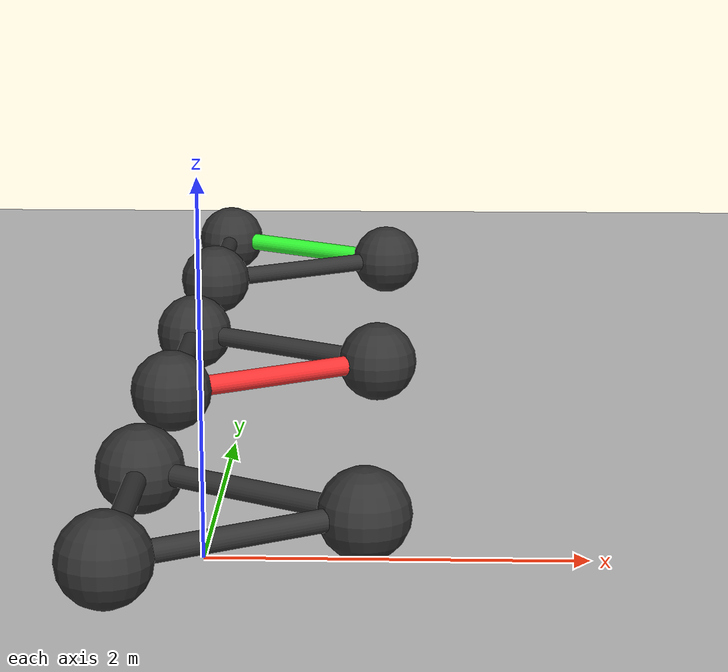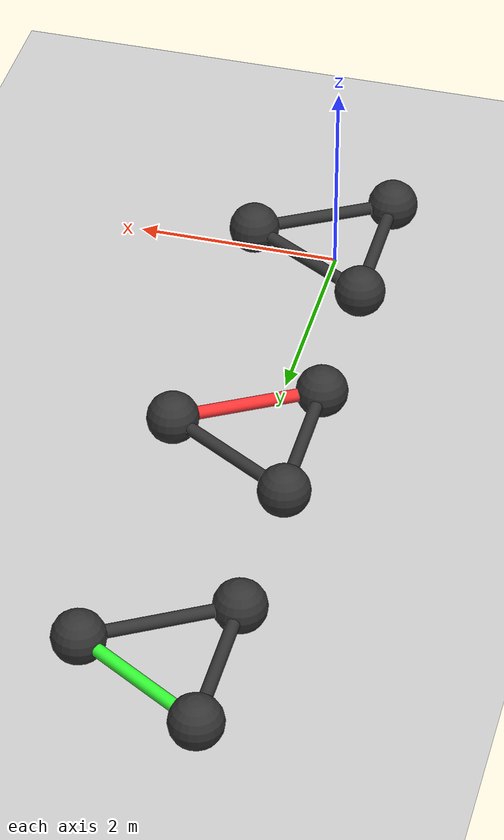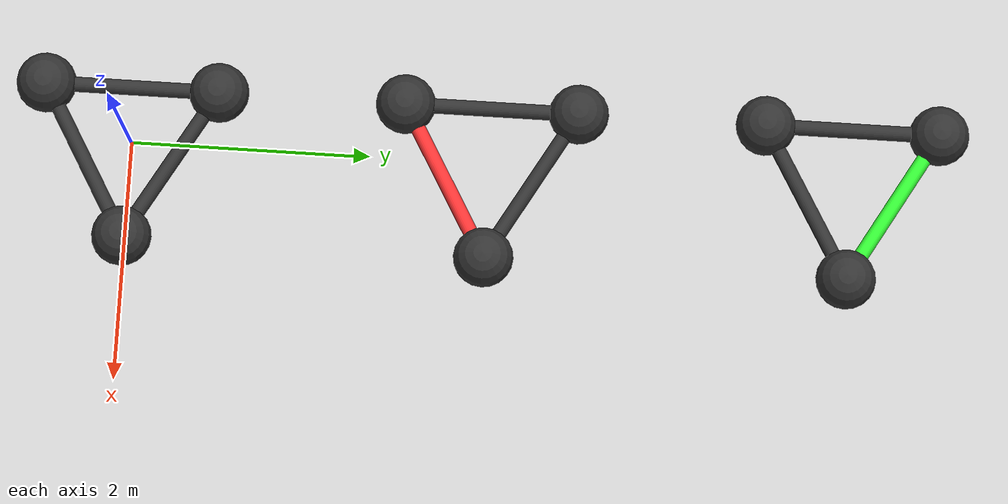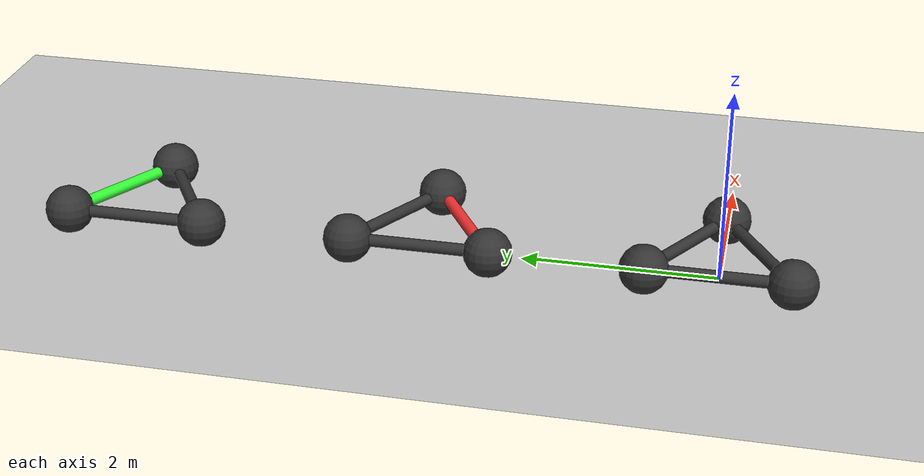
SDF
<?xml version="1.0" ?>

<sdf version="1.6">
  <world name="triball_drift">
    <plugin
      filename="gz-sim-apply-link-wrench-system"
      name="gz::sim::systems::ApplyLinkWrench">
    </plugin>

    <physics name="fast" type="ignored">
      <real_time_factor>0</real_time_factor>
    </physics>
    <gravity>1 0 -9.8</gravity>
    <plugin
      filename="gz-sim-physics-system"
      name="gz::sim::systems::Physics">
    </plugin>
    <plugin
      filename="gz-sim-user-commands-system"
      name="gz::sim::systems::UserCommands">
    </plugin>
    <plugin
      filename="gz-sim-scene-broadcaster-system"
      name="gz::sim::systems::SceneBroadcaster">
    </plugin>

    <model name="ground_plane">
      <static>true</static>
      <link name="link">
        <collision name="collision">
          <geometry>
            <plane>
              <normal>0 0 1</normal>
              <size>100 100</size>
            </plane>
          </geometry>
        </collision>
        <visual name="visual">
          <geometry>
            <plane>
              <normal>0 0 1</normal>
              <size>100 100</size>
            </plane>
          </geometry>
          <material>
            <ambient>0.8 0.8 0.8 1</ambient>
            <diffuse>0.8 0.8 0.8 1</diffuse>
            <specular>0.8 0.8 0.8 1</specular>
          </material>
        </visual>
      </link>
    </model>

    <light type="directional" name="sun">
      <cast_shadows>true</cast_shadows>
      <pose>0 0 10 0 0 0</pose>
      <diffuse>1 1 1 1</diffuse>
      <specular>0.5 0.5 0.5 1</specular>
      <attenuation>
        <range>1000</range>
        <constant>0.9</constant>
        <linear>0.01</linear>
        <quadratic>0.001</quadratic>
      </attenuation>
      <direction>-0.5 0.1 -0.9</direction>
    </light>

    <model name="triball_lumped">
      <pose>0 0 0  0 0 0</pose>
      <link name="link">
        <pose>0 0 0.25  0 0 0</pose>
        <inertial>
          <pose>0.0 0.0 0  0 0 0</pose>
          <mass>7.911</mass>
          <inertia>
            <ixx>2.9446500000000007</ixx>
            <iyy>2.944649999999999</iyy>
            <izz>5.691525</izz>
            <ixy>0.0</ixy>
            <ixz>0.0</ixz>
            <iyz>0.0</iyz>
          </inertia>
        </inertial>
        <sensor name="imu" type="imu">
          <always_on>1</always_on>
        </sensor>

        <collision name="collision_a">
          <pose>0.8333333333333333 0 0  0 0 0</pose>
          <geometry>
            <sphere>
              <radius>0.25</radius>
            </sphere>
          </geometry>
          <surface>
            <friction>
              <ode>
                <mu>0.9</mu>
                <mu2>0.9</mu2>
                <fdir1>1 0 0</fdir1>
              </ode>
            </friction>
          </surface>
        </collision>
        <visual name="visual_a">
          <pose>0.8333333333333333 0 0  0 0 0</pose>
          <geometry>
            <sphere>
              <radius>0.25</radius>
            </sphere>
          </geometry>
          <material>
            <ambient>0.2 0.2 0.2 1</ambient>
            <diffuse>0.2 0.2 0.2 1</diffuse>
            <specular>0.2 0.2 0.2 1</specular>
          </material>
        </visual>

        <collision name="collision_a_to_b">
          <pose>0.20833333333333331 0.36084391824351614 0.0  -1.5707962969925737 -1.0471975511965974 1.047197525387029</pose>
          <geometry>
            <cylinder>
              <radius>0.0625</radius>
              <length>1.4433756729740645</length>
            </cylinder>
          </geometry>
          <surface>
            <friction>
              <ode>
                <mu>0.9</mu>
                <mu2>0.9</mu2>
              </ode>
            </friction>
          </surface>
        </collision>
        <visual name="visual_a_to_b">
          <pose>0.20833333333333331 0.36084391824351614 0.0  -1.5707962969925737 -1.0471975511965974 1.047197525387029</pose>
          <geometry>
            <cylinder>
              <radius>0.0625</radius>
              <length>1.4433756729740645</length>
            </cylinder>
          </geometry>
          <material>
            <ambient>0.2 0.2 0.2 1</ambient>
            <diffuse>0.2 0.2 0.2 1</diffuse>
            <specular>0.2 0.2 0.2 1</specular>
          </material>
        </visual>

        <collision name="collision_a_to_c">
          <pose>0.20833333333333331 -0.36084391824351614 0.0  1.5707962969925737 -1.0471975511965974 -1.047197525387029</pose>
          <geometry>
            <cylinder>
              <radius>0.0625</radius>
              <length>1.4433756729740645</length>
            </cylinder>
          </geometry>
          <surface>
            <friction>
              <ode>
                <mu>0.9</mu>
                <mu2>0.9</mu2>
              </ode>
            </friction>
          </surface>
        </collision>
        <visual name="visual_a_to_c">
          <pose>0.20833333333333331 -0.36084391824351614 0.0  1.5707962969925737 -1.0471975511965974 -1.047197525387029</pose>
          <geometry>
            <cylinder>
              <radius>0.0625</radius>
              <length>1.4433756729740645</length>
            </cylinder>
          </geometry>
          <material>
            <ambient>0.2 0.2 0.2 1</ambient>
            <diffuse>0.2 0.2 0.2 1</diffuse>
            <specular>0.2 0.2 0.2 1</specular>
          </material>
        </visual>

        <collision name="collision_b">
          <pose>-0.41666666666666663 0.7216878364870323 0  0 0 0</pose>
          <geometry>
            <sphere>
              <radius>0.25</radius>
            </sphere>
          </geometry>
          <surface>
            <friction>
              <ode>
                <mu>0.9</mu>
                <mu2>0.9</mu2>
                <fdir1>1 0 0</fdir1>
              </ode>
            </friction>
          </surface>
        </collision>
        <visual name="visual_b">
          <pose>-0.41666666666666663 0.7216878364870323 0  0 0 0</pose>
          <geometry>
            <sphere>
              <radius>0.25</radius>
            </sphere>
          </geometry>
          <material>
            <ambient>0.2 0.2 0.2 1</ambient>
            <diffuse>0.2 0.2 0.2 1</diffuse>
            <specular>0.2 0.2 0.2 1</specular>
          </material>
        </visual>

        <collision name="collision_b_to_c">
          <pose>-0.41666666666666663 0.0 0.0  1.5707963267948963 -0.0 0.0</pose>
          <geometry>
            <cylinder>
              <radius>0.0625</radius>
              <length>1.4433756729740645</length>
            </cylinder>
          </geometry>
          <surface>
            <friction>
              <ode>
                <mu>0.9</mu>
                <mu2>0.9</mu2>
              </ode>
            </friction>
          </surface>
        </collision>
        <visual name="visual_b_to_c">
          <pose>-0.41666666666666663 0.0 0.0  1.5707963267948963 -0.0 0.0</pose>
          <geometry>
            <cylinder>
              <radius>0.0625</radius>
              <length>1.4433756729740645</length>
            </cylinder>
          </geometry>
          <material>
            <ambient>0.2 0.2 0.2 1</ambient>
            <diffuse>0.2 0.2 0.2 1</diffuse>
            <specular>0.2 0.2 0.2 1</specular>
          </material>
        </visual>

        <collision name="collision_c">
          <pose>-0.41666666666666663 -0.7216878364870323 0  0 0 0</pose>
          <geometry>
            <sphere>
              <radius>0.25</radius>
            </sphere>
          </geometry>
          <surface>
            <friction>
              <ode>
                <mu>0.9</mu>
                <mu2>0.9</mu2>
                <fdir1>1 0 0</fdir1>
              </ode>
            </friction>
          </surface>
        </collision>
        <visual name="visual_c">
          <pose>-0.41666666666666663 -0.7216878364870323 0  0 0 0</pose>
          <geometry>
            <sphere>
              <radius>0.25</radius>
            </sphere>
          </geometry>
          <material>
            <ambient>0.2 0.2 0.2 1</ambient>
            <diffuse>0.2 0.2 0.2 1</diffuse>
            <specular>0.2 0.2 0.2 1</specular>
          </material>
        </visual>

      </link>
    </model>
    <model name="triball_fixed">
      <pose>0 3 0  0 0 0</pose>
      <link name="chassis">
        <pose>0 0 0.25  0 0 0</pose>
        <inertial>
          <pose>0.0 0.0 0 0 0 0</pose>
          <mass>3.9555</mass>
          <inertia>
            <ixx>1.4723250000000003</ixx>
            <iyy>1.4723249999999994</iyy>
            <izz>2.8457625</izz>
            <ixy>0.0</ixy>
            <ixz>0.0</ixz>
            <iyz>0.0</iyz>
          </inertia>
        </inertial>
        <sensor name="imu" type="imu">
          <always_on>1</always_on>
        </sensor>

        <collision name="collision_a_to_b">
          <pose>0.20833333333333331 0.36084391824351614 0.0  -1.5707962969925737 -1.0471975511965974 1.047197525387029</pose>
          <geometry>
            <cylinder>
              <radius>0.0625</radius>
              <length>1.4433756729740645</length>
            </cylinder>
          </geometry>
          <surface>
            <friction>
              <ode>
                <mu>0.9</mu>
                <mu2>0.9</mu2>
              </ode>
            </friction>
          </surface>
        </collision>
        <visual name="visual_a_to_b">
          <pose>0.20833333333333331 0.36084391824351614 0.0  -1.5707962969925737 -1.0471975511965974 1.047197525387029</pose>
          <geometry>
            <cylinder>
              <radius>0.0625</radius>
              <length>1.4433756729740645</length>
            </cylinder>
          </geometry>
          <material>
            <ambient>0.2 0.2 0.2 1</ambient>
            <diffuse>0.2 0.2 0.2 1</diffuse>
            <specular>0.2 0.2 0.2 1</specular>
          </material>
        </visual>

        <collision name="collision_a_to_c">
          <pose>0.20833333333333331 -0.36084391824351614 0.0  1.5707962969925737 -1.0471975511965974 -1.047197525387029</pose>
          <geometry>
            <cylinder>
              <radius>0.0625</radius>
              <length>1.4433756729740645</length>
            </cylinder>
          </geometry>
          <surface>
            <friction>
              <ode>
                <mu>0.9</mu>
                <mu2>0.9</mu2>
              </ode>
            </friction>
          </surface>
        </collision>
        <visual name="visual_a_to_c">
          <pose>0.20833333333333331 -0.36084391824351614 0.0  1.5707962969925737 -1.0471975511965974 -1.047197525387029</pose>
          <geometry>
            <cylinder>
              <radius>0.0625</radius>
              <length>1.4433756729740645</length>
            </cylinder>
          </geometry>
          <material>
            <ambient>1.0 0.2 0.2 1</ambient>
            <diffuse>1.0 0.2 0.2 1</diffuse>
            <specular>1.0 0.2 0.2 1</specular>
          </material>
        </visual>

        <collision name="collision_b_to_c">
          <pose>-0.41666666666666663 0.0 0.0  1.5707963267948963 -0.0 0.0</pose>
          <geometry>
            <cylinder>
              <radius>0.0625</radius>
              <length>1.4433756729740645</length>
            </cylinder>
          </geometry>
          <surface>
            <friction>
              <ode>
                <mu>0.9</mu>
                <mu2>0.9</mu2>
              </ode>
            </friction>
          </surface>
        </collision>
        <visual name="visual_b_to_c">
          <pose>-0.41666666666666663 0.0 0.0  1.5707963267948963 -0.0 0.0</pose>
          <geometry>
            <cylinder>
              <radius>0.0625</radius>
              <length>1.4433756729740645</length>
            </cylinder>
          </geometry>
          <material>
            <ambient>0.2 0.2 0.2 1</ambient>
            <diffuse>0.2 0.2 0.2 1</diffuse>
            <specular>0.2 0.2 0.2 1</specular>
          </material>
        </visual>

      </link>

      <link name="link_a">
        <pose>0.8333333333333333 0 0.25  0 0 0</pose>
        <inertial>
          <mass>1.3185</mass>
          <inertia>
            <ixx>0.0329625</ixx>
            <iyy>0.0329625</iyy>
            <izz>0.0329625</izz>
            <ixy>0</ixy>
            <ixz>0</ixz>
            <iyz>0</iyz>
          </inertia>
        </inertial>
        <collision name="collision">
          <geometry>
            <sphere>
              <radius>0.25</radius>
            </sphere>
          </geometry>
          <surface>
            <contact>
              <ode>
                <kp>10000000.0</kp>
                <kd>1.0</kd>
              </ode>
            </contact>
            <friction>
              <ode>
                <mu>0.9</mu>
                <mu2>0.9</mu2>
                <fdir1>1 0 0</fdir1>
              </ode>
            </friction>
          </surface>
        </collision>
        <visual name="visual">
          <geometry>
            <sphere>
              <radius>0.25</radius>
            </sphere>
          </geometry>
          <material>
            <ambient>0.2 0.2 0.2 1</ambient>
            <diffuse>0.2 0.2 0.2 1</diffuse>
            <specular>0.2 0.2 0.2 1</specular>
          </material>
        </visual>
      </link>
      <joint name="joint_a" type="fixed">
        <parent>chassis</parent>
        <child>link_a</child>
      </joint>

      <link name="link_b">
        <pose>-0.41666666666666663 0.7216878364870323 0.25  0 0 0</pose>
        <inertial>
          <mass>1.3185</mass>
          <inertia>
            <ixx>0.0329625</ixx>
            <iyy>0.0329625</iyy>
            <izz>0.0329625</izz>
            <ixy>0</ixy>
            <ixz>0</ixz>
            <iyz>0</iyz>
          </inertia>
        </inertial>
        <collision name="collision">
          <geometry>
            <sphere>
              <radius>0.25</radius>
            </sphere>
          </geometry>
          <surface>
            <contact>
              <ode>
                <kp>10000000.0</kp>
                <kd>1.0</kd>
              </ode>
            </contact>
            <friction>
              <ode>
                <mu>0.9</mu>
                <mu2>0.9</mu2>
                <fdir1>1 0 0</fdir1>
              </ode>
            </friction>
          </surface>
        </collision>
        <visual name="visual">
          <geometry>
            <sphere>
              <radius>0.25</radius>
            </sphere>
          </geometry>
          <material>
            <ambient>0.2 0.2 0.2 1</ambient>
            <diffuse>0.2 0.2 0.2 1</diffuse>
            <specular>0.2 0.2 0.2 1</specular>
          </material>
        </visual>
      </link>
      <joint name="joint_b" type="fixed">
        <parent>chassis</parent>
        <child>link_b</child>
      </joint>

      <link name="link_c">
        <pose>-0.41666666666666663 -0.7216878364870323 0.25  0 0 0</pose>
        <inertial>
          <mass>1.3185</mass>
          <inertia>
            <ixx>0.0329625</ixx>
            <iyy>0.0329625</iyy>
            <izz>0.0329625</izz>
            <ixy>0</ixy>
            <ixz>0</ixz>
            <iyz>0</iyz>
          </inertia>
        </inertial>
        <collision name="collision">
          <geometry>
            <sphere>
              <radius>0.25</radius>
            </sphere>
          </geometry>
          <surface>
            <contact>
              <ode>
                <kp>10000000.0</kp>
                <kd>1.0</kd>
              </ode>
            </contact>
            <friction>
              <ode>
                <mu>0.9</mu>
                <mu2>0.9</mu2>
                <fdir1>1 0 0</fdir1>
              </ode>
            </friction>
          </surface>
        </collision>
        <visual name="visual">
          <geometry>
            <sphere>
              <radius>0.25</radius>
            </sphere>
          </geometry>
          <material>
            <ambient>0.2 0.2 0.2 1</ambient>
            <diffuse>0.2 0.2 0.2 1</diffuse>
            <specular>0.2 0.2 0.2 1</specular>
          </material>
        </visual>
      </link>
      <joint name="joint_c" type="fixed">
        <parent>chassis</parent>
        <child>link_c</child>
      </joint>

    </model>
    <model name="triball_revolute">
      <pose>0 6 0  0 0 0</pose>
      <link name="chassis">
        <pose>0 0 0.25  0 0 0</pose>
        <inertial>
          <pose>0.0 0.0 0 0 0 0</pose>
          <mass>3.9555</mass>
          <inertia>
            <ixx>1.4723250000000003</ixx>
            <iyy>1.4723249999999994</iyy>
            <izz>2.8457625</izz>
            <ixy>0.0</ixy>
            <ixz>0.0</ixz>
            <iyz>0.0</iyz>
          </inertia>
        </inertial>
        <sensor name="imu" type="imu">
          <always_on>1</always_on>
        </sensor>

        <collision name="collision_a_to_b">
          <pose>0.20833333333333331 0.36084391824351614 0.0  -1.5707962969925737 -1.0471975511965974 1.047197525387029</pose>
          <geometry>
            <cylinder>
              <radius>0.0625</radius>
              <length>1.4433756729740645</length>
            </cylinder>
          </geometry>
          <surface>
            <friction>
              <ode>
                <mu>0.1</mu>
                <mu2>0.1</mu2>
              </ode>
            </friction>
          </surface>
        </collision>
        <visual name="visual_a_to_b">
          <pose>0.20833333333333331 0.36084391824351614 0.0  -1.5707962969925737 -1.0471975511965974 1.047197525387029</pose>
          <geometry>
            <cylinder>
              <radius>0.0625</radius>
              <length>1.4433756729740645</length>
            </cylinder>
          </geometry>
          <material>
            <ambient>0.2 1.0 0.2 1</ambient>
            <diffuse>0.2 1.0 0.2 1</diffuse>
            <specular>0.2 1.0 0.2 1</specular>
          </material>
        </visual>

        <collision name="collision_a_to_c">
          <pose>0.20833333333333331 -0.36084391824351614 0.0  1.5707962969925737 -1.0471975511965974 -1.047197525387029</pose>
          <geometry>
            <cylinder>
              <radius>0.0625</radius>
              <length>1.4433756729740645</length>
            </cylinder>
          </geometry>
          <surface>
            <friction>
              <ode>
                <mu>0.1</mu>
                <mu2>0.1</mu2>
              </ode>
            </friction>
          </surface>
        </collision>
        <visual name="visual_a_to_c">
          <pose>0.20833333333333331 -0.36084391824351614 0.0  1.5707962969925737 -1.0471975511965974 -1.047197525387029</pose>
          <geometry>
            <cylinder>
              <radius>0.0625</radius>
              <length>1.4433756729740645</length>
            </cylinder>
          </geometry>
          <material>
            <ambient>0.2 0.2 0.2 1</ambient>
            <diffuse>0.2 0.2 0.2 1</diffuse>
            <specular>0.2 0.2 0.2 1</specular>
          </material>
        </visual>

        <collision name="collision_b_to_c">
          <pose>-0.41666666666666663 0.0 0.0  1.5707963267948963 -0.0 0.0</pose>
          <geometry>
            <cylinder>
              <radius>0.0625</radius>
              <length>1.4433756729740645</length>
            </cylinder>
          </geometry>
          <surface>
            <friction>
              <ode>
                <mu>0.1</mu>
                <mu2>0.1</mu2>
              </ode>
            </friction>
          </surface>
        </collision>
        <visual name="visual_b_to_c">
          <pose>-0.41666666666666663 0.0 0.0  1.5707963267948963 -0.0 0.0</pose>
          <geometry>
            <cylinder>
              <radius>0.0625</radius>
              <length>1.4433756729740645</length>
            </cylinder>
          </geometry>
          <material>
            <ambient>0.2 0.2 0.2 1</ambient>
            <diffuse>0.2 0.2 0.2 1</diffuse>
            <specular>0.2 0.2 0.2 1</specular>
          </material>
        </visual>

      </link>

      <link name="link_a">
        <pose>0.8333333333333333 0 0.25  0 0 0</pose>
        <inertial>
          <mass>1.3185</mass>
          <inertia>
            <ixx>0.0329625</ixx>
            <iyy>0.0329625</iyy>
            <izz>0.0329625</izz>
            <ixy>0</ixy>
            <ixz>0</ixz>
            <iyz>0</iyz>
          </inertia>
        </inertial>
        <collision name="collision">
          <geometry>
            <sphere>
              <radius>0.25</radius>
            </sphere>
          </geometry>
          <surface>
            <contact>
              <ode>
                <kp>10000000.0</kp>
                <kd>1.0</kd>
              </ode>
            </contact>
            <friction>
              <ode>
                <mu>0.1</mu>
                <mu2>0.1</mu2>
                <fdir1>0 1 0</fdir1>
              </ode>
            </friction>
          </surface>
        </collision>
        <visual name="visual">
          <geometry>
            <sphere>
              <radius>0.25</radius>
            </sphere>
          </geometry>
          <material>
            <ambient>0.2 0.2 0.2 1</ambient>
            <diffuse>0.2 0.2 0.2 1</diffuse>
            <specular>0.2 0.2 0.2 1</specular>
          </material>
        </visual>
      </link>
      <joint name="joint_a" type="revolute">
        <parent>chassis</parent>
        <child>link_a</child>
        <axis>
          <xyz>0 1 0</xyz>
          <dynamics>
            <friction>0.1</friction>
          </dynamics>
        </axis>
      </joint>

      <link name="link_b">
        <pose>-0.41666666666666663 0.7216878364870323 0.25  0 0 0</pose>
        <inertial>
          <mass>1.3185</mass>
          <inertia>
            <ixx>0.0329625</ixx>
            <iyy>0.0329625</iyy>
            <izz>0.0329625</izz>
            <ixy>0</ixy>
            <ixz>0</ixz>
            <iyz>0</iyz>
          </inertia>
        </inertial>
        <collision name="collision">
          <geometry>
            <sphere>
              <radius>0.25</radius>
            </sphere>
          </geometry>
          <surface>
            <contact>
              <ode>
                <kp>10000000.0</kp>
                <kd>1.0</kd>
              </ode>
            </contact>
            <friction>
              <ode>
                <mu>0.1</mu>
                <mu2>0.1</mu2>
                <fdir1>0 1 0</fdir1>
              </ode>
            </friction>
          </surface>
        </collision>
        <visual name="visual">
          <geometry>
            <sphere>
              <radius>0.25</radius>
            </sphere>
          </geometry>
          <material>
            <ambient>0.2 0.2 0.2 1</ambient>
            <diffuse>0.2 0.2 0.2 1</diffuse>
            <specular>0.2 0.2 0.2 1</specular>
          </material>
        </visual>
      </link>
      <joint name="joint_b" type="revolute">
        <parent>chassis</parent>
        <child>link_b</child>
        <axis>
          <xyz>0 1 0</xyz>
          <dynamics>
            <friction>0.1</friction>
          </dynamics>
        </axis>
      </joint>

      <link name="link_c">
        <pose>-0.41666666666666663 -0.7216878364870323 0.25  0 0 0</pose>
        <inertial>
          <mass>1.3185</mass>
          <inertia>
            <ixx>0.0329625</ixx>
            <iyy>0.0329625</iyy>
            <izz>0.0329625</izz>
            <ixy>0</ixy>
            <ixz>0</ixz>
            <iyz>0</iyz>
          </inertia>
        </inertial>
        <collision name="collision">
          <geometry>
            <sphere>
              <radius>0.25</radius>
            </sphere>
          </geometry>
          <surface>
            <contact>
              <ode>
                <kp>10000000.0</kp>
                <kd>1.0</kd>
              </ode>
            </contact>
            <friction>
              <ode>
                <mu>0.1</mu>
                <mu2>0.1</mu2>
                <fdir1>0 1 0</fdir1>
              </ode>
            </friction>
          </surface>
        </collision>
        <visual name="visual">
          <geometry>
            <sphere>
              <radius>0.25</radius>
            </sphere>
          </geometry>
          <material>
            <ambient>0.2 0.2 0.2 1</ambient>
            <diffuse>0.2 0.2 0.2 1</diffuse>
            <specular>0.2 0.2 0.2 1</specular>
          </material>
        </visual>
      </link>
      <joint name="joint_c" type="revolute">
        <parent>chassis</parent>
        <child>link_c</child>
        <axis>
          <xyz>0 1 0</xyz>
          <dynamics>
            <friction>0.1</friction>
          </dynamics>
        </axis>
      </joint>
      <plugin
        filename="gz-sim-wheel-slip-system"
        name="gz::sim::systems::WheelSlip">
        <wheel link_name="link_a">
          <wheel_radius>0.25</wheel_radius>
          <slip_compliance_lateral>1</slip_compliance_lateral>
          <slip_compliance_longitudinal>1</slip_compliance_longitudinal>
          <wheel_normal_force>25</wheel_normal_force>
        </wheel>
        <wheel link_name="link_b">
          <wheel_radius>0.25</wheel_radius>
          <slip_compliance_lateral>1</slip_compliance_lateral>
          <slip_compliance_longitudinal>1</slip_compliance_longitudinal>
          <wheel_normal_force>25</wheel_normal_force>
        </wheel>
        <wheel link_name="link_c">
          <wheel_radius>0.25</wheel_radius>
          <slip_compliance_lateral>1</slip_compliance_lateral>
          <slip_compliance_longitudinal>1</slip_compliance_longitudinal>
          <wheel_normal_force>25</wheel_normal_force>
        </wheel>
      </plugin>

    </model>
  </world>
</sdf>
